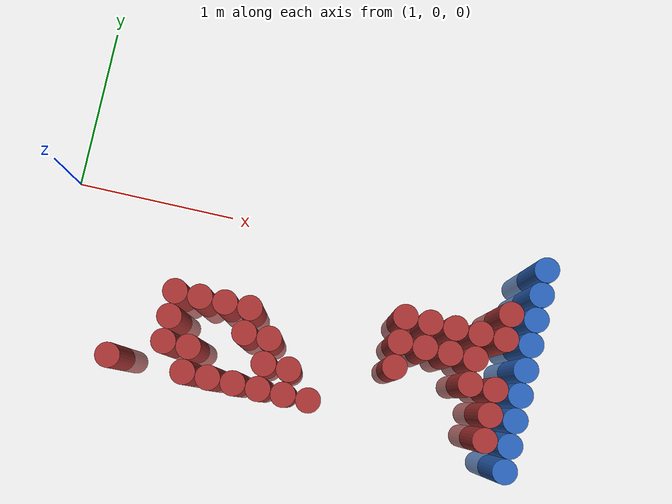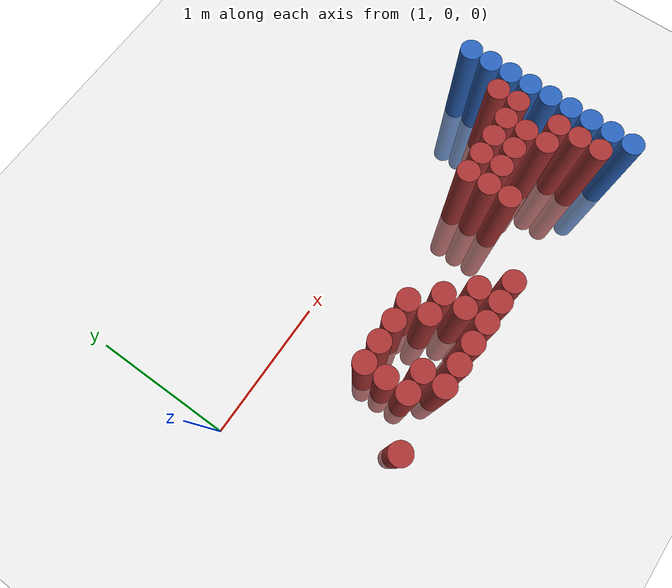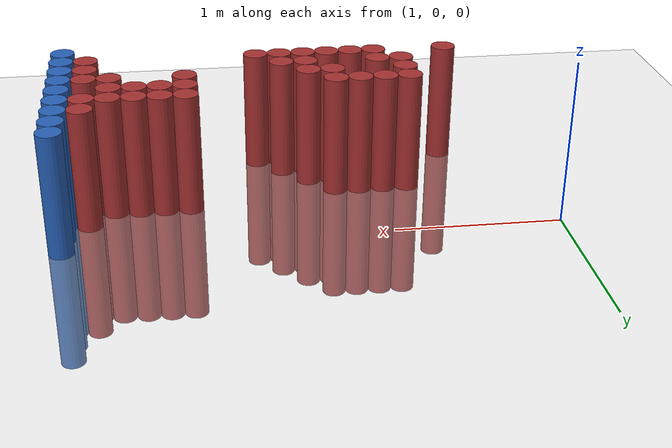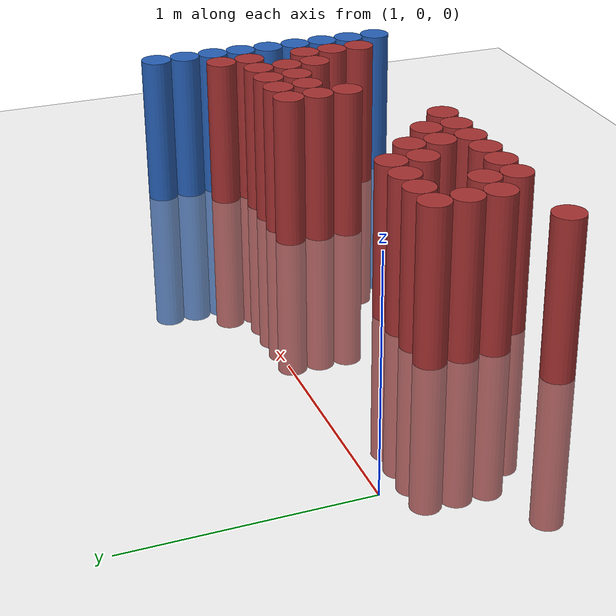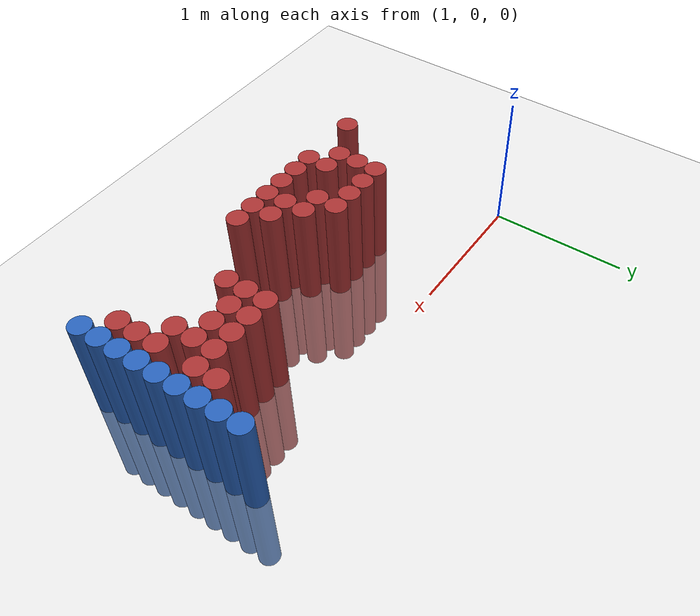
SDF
<sdf version="1.6">
 <world name="default">
  <model name="ground_plane">
   <static>1</static>
   <link name="link">
    <collision name="collision">
     <geometry><plane><normal>0 0 1</normal><size>100 100</size></plane></geometry>
     <surface><friction><ode><mu>100</mu><mu2>50</mu2></ode></friction></surface>
    </collision>
    <visual name="visual">
     <cast_shadows>0</cast_shadows>
     <geometry><plane><normal>0 0 1</normal><size>100 100</size></plane></geometry>
     <material>
      <script><uri>file://media/materials/scripts/gazebo.material</uri><name>Gazebo/Grey</name></script>
     </material>
    </visual>
   </link>
  </model>
  <model name="unit_cylinder_100">
   <static>1</static>
   <pose>3.925000 -1.025000 0.000000 0.000000 0.000000 0.000000</pose>
   <link name="link">
    <inertial>
     <mass>1</mass>
     <inertia><ixx>0.145833</ixx><ixy>0</ixy><ixz>0</ixz><iyy>0.145833</iyy><iyz>0</iyz><izz>0.125</izz></inertia>
    </inertial>
    <collision name="collision">
     <geometry><cylinder><radius>0.075000</radius><length>1.5</length></cylinder></geometry>
    </collision>
    <visual name="visual">
     <geometry><cylinder><radius>0.075000</radius><length>1.5</length></cylinder></geometry>
     <material>
      <ambient>0.152000 0.379000 0.720000 1</ambient>
      <diffuse>0.152000 0.379000 0.720000 1</diffuse>
     </material>
     <material>
      <script><name>Gazebo/Grey</name><uri>file://media/materials/scripts/gazebo.material</uri></script>
     </material>
    </visual>
   </link>
  </model>
  <model name="unit_cylinder_102">
   <static>1</static>
   <pose>3.925000 -0.875000 0.000000 0.000000 0.000000 0.000000</pose>
   <link name="link">
    <inertial>
     <mass>1</mass>
     <inertia><ixx>0.145833</ixx><ixy>0</ixy><ixz>0</ixz><iyy>0.145833</iyy><iyz>0</iyz><izz>0.125</izz></inertia>
    </inertial>
    <collision name="collision">
     <geometry><cylinder><radius>0.075000</radius><length>1.5</length></cylinder></geometry>
    </collision>
    <visual name="visual">
     <geometry><cylinder><radius>0.075000</radius><length>1.5</length></cylinder></geometry>
     <material>
      <ambient>0.152000 0.379000 0.720000 1</ambient>
      <diffuse>0.152000 0.379000 0.720000 1</diffuse>
     </material>
     <material>
      <script><name>Gazebo/Grey</name><uri>file://media/materials/scripts/gazebo.material</uri></script>
     </material>
    </visual>
   </link>
  </model>
  <model name="unit_cylinder_104">
   <static>1</static>
   <pose>3.925000 -0.725000 0.000000 0.000000 0.000000 0.000000</pose>
   <link name="link">
    <inertial>
     <mass>1</mass>
     <inertia><ixx>0.145833</ixx><ixy>0</ixy><ixz>0</ixz><iyy>0.145833</iyy><iyz>0</iyz><izz>0.125</izz></inertia>
    </inertial>
    <collision name="collision">
     <geometry><cylinder><radius>0.075000</radius><length>1.5</length></cylinder></geometry>
    </collision>
    <visual name="visual">
     <geometry><cylinder><radius>0.075000</radius><length>1.5</length></cylinder></geometry>
     <material>
      <ambient>0.152000 0.379000 0.720000 1</ambient>
      <diffuse>0.152000 0.379000 0.720000 1</diffuse>
     </material>
     <material>
      <script><name>Gazebo/Grey</name><uri>file://media/materials/scripts/gazebo.material</uri></script>
     </material>
    </visual>
   </link>
  </model>
  <model name="unit_cylinder_106">
   <static>1</static>
   <pose>3.925000 -0.575000 0.000000 0.000000 0.000000 0.000000</pose>
   <link name="link">
    <inertial>
     <mass>1</mass>
     <inertia><ixx>0.145833</ixx><ixy>0</ixy><ixz>0</ixz><iyy>0.145833</iyy><iyz>0</iyz><izz>0.125</izz></inertia>
    </inertial>
    <collision name="collision">
     <geometry><cylinder><radius>0.075000</radius><length>1.5</length></cylinder></geometry>
    </collision>
    <visual name="visual">
     <geometry><cylinder><radius>0.075000</radius><length>1.5</length></cylinder></geometry>
     <material>
      <ambient>0.152000 0.379000 0.720000 1</ambient>
      <diffuse>0.152000 0.379000 0.720000 1</diffuse>
     </material>
     <material>
      <script><name>Gazebo/Grey</name><uri>file://media/materials/scripts/gazebo.material</uri></script>
     </material>
    </visual>
   </link>
  </model>
  <model name="unit_cylinder_108">
   <static>1</static>
   <pose>3.925000 -0.425000 0.000000 0.000000 0.000000 0.000000</pose>
   <link name="link">
    <inertial>
     <mass>1</mass>
     <inertia><ixx>0.145833</ixx><ixy>0</ixy><ixz>0</ixz><iyy>0.145833</iyy><iyz>0</iyz><izz>0.125</izz></inertia>
    </inertial>
    <collision name="collision">
     <geometry><cylinder><radius>0.075000</radius><length>1.5</length></cylinder></geometry>
    </collision>
    <visual name="visual">
     <geometry><cylinder><radius>0.075000</radius><length>1.5</length></cylinder></geometry>
     <material>
      <ambient>0.152000 0.379000 0.720000 1</ambient>
      <diffuse>0.152000 0.379000 0.720000 1</diffuse>
     </material>
     <material>
      <script><name>Gazebo/Grey</name><uri>file://media/materials/scripts/gazebo.material</uri></script>
     </material>
    </visual>
   </link>
  </model>
  <model name="unit_cylinder_110">
   <static>1</static>
   <pose>3.925000 -0.275000 0.000000 0.000000 0.000000 0.000000</pose>
   <link name="link">
    <inertial>
     <mass>1</mass>
     <inertia><ixx>0.145833</ixx><ixy>0</ixy><ixz>0</ixz><iyy>0.145833</iyy><iyz>0</iyz><izz>0.125</izz></inertia>
    </inertial>
    <collision name="collision">
     <geometry><cylinder><radius>0.075000</radius><length>1.5</length></cylinder></geometry>
    </collision>
    <visual name="visual">
     <geometry><cylinder><radius>0.075000</radius><length>1.5</length></cylinder></geometry>
     <material>
      <ambient>0.152000 0.379000 0.720000 1</ambient>
      <diffuse>0.152000 0.379000 0.720000 1</diffuse>
     </material>
     <material>
      <script><name>Gazebo/Grey</name><uri>file://media/materials/scripts/gazebo.material</uri></script>
     </material>
    </visual>
   </link>
  </model>
  <model name="unit_cylinder_112">
   <static>1</static>
   <pose>3.925000 -0.125000 0.000000 0.000000 0.000000 0.000000</pose>
   <link name="link">
    <inertial>
     <mass>1</mass>
     <inertia><ixx>0.145833</ixx><ixy>0</ixy><ixz>0</ixz><iyy>0.145833</iyy><iyz>0</iyz><izz>0.125</izz></inertia>
    </inertial>
    <collision name="collision">
     <geometry><cylinder><radius>0.075000</radius><length>1.5</length></cylinder></geometry>
    </collision>
    <visual name="visual">
     <geometry><cylinder><radius>0.075000</radius><length>1.5</length></cylinder></geometry>
     <material>
      <ambient>0.152000 0.379000 0.720000 1</ambient>
      <diffuse>0.152000 0.379000 0.720000 1</diffuse>
     </material>
     <material>
      <script><name>Gazebo/Grey</name><uri>file://media/materials/scripts/gazebo.material</uri></script>
     </material>
    </visual>
   </link>
  </model>
  <model name="unit_cylinder_114">
   <static>1</static>
   <pose>3.925000 0.025000 0.000000 0.000000 0.000000 0.000000</pose>
   <link name="link">
    <inertial>
     <mass>1</mass>
     <inertia><ixx>0.145833</ixx><ixy>0</ixy><ixz>0</ixz><iyy>0.145833</iyy><iyz>0</iyz><izz>0.125</izz></inertia>
    </inertial>
    <collision name="collision">
     <geometry><cylinder><radius>0.075000</radius><length>1.5</length></cylinder></geometry>
    </collision>
    <visual name="visual">
     <geometry><cylinder><radius>0.075000</radius><length>1.5</length></cylinder></geometry>
     <material>
      <ambient>0.152000 0.379000 0.720000 1</ambient>
      <diffuse>0.152000 0.379000 0.720000 1</diffuse>
     </material>
     <material>
      <script><name>Gazebo/Grey</name><uri>file://media/materials/scripts/gazebo.material</uri></script>
     </material>
    </visual>
   </link>
  </model>
  <model name="unit_cylinder_340">
   <static>1</static>
   <pose>1.525000 -1.025000 0.000000 0.000000 0.000000 0.000000</pose>
   <link name="link">
    <inertial>
     <mass>1</mass>
     <inertia><ixx>0.145833</ixx><ixy>0</ixy><ixz>0</ixz><iyy>0.145833</iyy><iyz>0</iyz><izz>0.125</izz></inertia>
    </inertial>
    <collision name="collision">
     <geometry><cylinder><radius>0.075000</radius><length>1.5</length></cylinder></geometry>
    </collision>
    <visual name="visual">
     <geometry><cylinder><radius>0.075000</radius><length>1.5</length></cylinder></geometry>
     <material>
      <ambient>0.648000 0.192000 0.192000 1</ambient>
      <diffuse>0.648000 0.192000 0.192000 1</diffuse>
     </material>
     <material>
      <script><name>Gazebo/Grey</name><uri>file://media/materials/scripts/gazebo.material</uri></script>
     </material>
    </visual>
   </link>
  </model>
  <model name="unit_cylinder_347">
   <static>1</static>
   <pose>1.825000 -0.875000 0.000000 0.000000 0.000000 0.000000</pose>
   <link name="link">
    <inertial>
     <mass>1</mass>
     <inertia><ixx>0.145833</ixx><ixy>0</ixy><ixz>0</ixz><iyy>0.145833</iyy><iyz>0</iyz><izz>0.125</izz></inertia>
    </inertial>
    <collision name="collision">
     <geometry><cylinder><radius>0.075000</radius><length>1.5</length></cylinder></geometry>
    </collision>
    <visual name="visual">
     <geometry><cylinder><radius>0.075000</radius><length>1.5</length></cylinder></geometry>
     <material>
      <ambient>0.648000 0.192000 0.192000 1</ambient>
      <diffuse>0.648000 0.192000 0.192000 1</diffuse>
     </material>
     <material>
      <script><name>Gazebo/Grey</name><uri>file://media/materials/scripts/gazebo.material</uri></script>
     </material>
    </visual>
   </link>
  </model>
  <model name="unit_cylinder_348">
   <static>1</static>
   <pose>1.825000 -0.725000 0.000000 0.000000 0.000000 0.000000</pose>
   <link name="link">
    <inertial>
     <mass>1</mass>
     <inertia><ixx>0.145833</ixx><ixy>0</ixy><ixz>0</ixz><iyy>0.145833</iyy><iyz>0</iyz><izz>0.125</izz></inertia>
    </inertial>
    <collision name="collision">
     <geometry><cylinder><radius>0.075000</radius><length>1.5</length></cylinder></geometry>
    </collision>
    <visual name="visual">
     <geometry><cylinder><radius>0.075000</radius><length>1.5</length></cylinder></geometry>
     <material>
      <ambient>0.648000 0.192000 0.192000 1</ambient>
      <diffuse>0.648000 0.192000 0.192000 1</diffuse>
     </material>
     <material>
      <script><name>Gazebo/Grey</name><uri>file://media/materials/scripts/gazebo.material</uri></script>
     </material>
    </visual>
   </link>
  </model>
  <model name="unit_cylinder_349">
   <static>1</static>
   <pose>1.825000 -0.575000 0.000000 0.000000 0.000000 0.000000</pose>
   <link name="link">
    <inertial>
     <mass>1</mass>
     <inertia><ixx>0.145833</ixx><ixy>0</ixy><ixz>0</ixz><iyy>0.145833</iyy><iyz>0</iyz><izz>0.125</izz></inertia>
    </inertial>
    <collision name="collision">
     <geometry><cylinder><radius>0.075000</radius><length>1.5</length></cylinder></geometry>
    </collision>
    <visual name="visual">
     <geometry><cylinder><radius>0.075000</radius><length>1.5</length></cylinder></geometry>
     <material>
      <ambient>0.648000 0.192000 0.192000 1</ambient>
      <diffuse>0.648000 0.192000 0.192000 1</diffuse>
     </material>
     <material>
      <script><name>Gazebo/Grey</name><uri>file://media/materials/scripts/gazebo.material</uri></script>
     </material>
    </visual>
   </link>
  </model>
  <model name="unit_cylinder_350">
   <static>1</static>
   <pose>1.975000 -1.025000 0.000000 0.000000 0.000000 0.000000</pose>
   <link name="link">
    <inertial>
     <mass>1</mass>
     <inertia><ixx>0.145833</ixx><ixy>0</ixy><ixz>0</ixz><iyy>0.145833</iyy><iyz>0</iyz><izz>0.125</izz></inertia>
    </inertial>
    <collision name="collision">
     <geometry><cylinder><radius>0.075000</radius><length>1.5</length></cylinder></geometry>
    </collision>
    <visual name="visual">
     <geometry><cylinder><radius>0.075000</radius><length>1.5</length></cylinder></geometry>
     <material>
      <ambient>0.648000 0.192000 0.192000 1</ambient>
      <diffuse>0.648000 0.192000 0.192000 1</diffuse>
     </material>
     <material>
      <script><name>Gazebo/Grey</name><uri>file://media/materials/scripts/gazebo.material</uri></script>
     </material>
    </visual>
   </link>
  </model>
  <model name="unit_cylinder_351">
   <static>1</static>
   <pose>1.975000 -0.875000 0.000000 0.000000 0.000000 0.000000</pose>
   <link name="link">
    <inertial>
     <mass>1</mass>
     <inertia><ixx>0.145833</ixx><ixy>0</ixy><ixz>0</ixz><iyy>0.145833</iyy><iyz>0</iyz><izz>0.125</izz></inertia>
    </inertial>
    <collision name="collision">
     <geometry><cylinder><radius>0.075000</radius><length>1.5</length></cylinder></geometry>
    </collision>
    <visual name="visual">
     <geometry><cylinder><radius>0.075000</radius><length>1.5</length></cylinder></geometry>
     <material>
      <ambient>0.648000 0.192000 0.192000 1</ambient>
      <diffuse>0.648000 0.192000 0.192000 1</diffuse>
     </material>
     <material>
      <script><name>Gazebo/Grey</name><uri>file://media/materials/scripts/gazebo.material</uri></script>
     </material>
    </visual>
   </link>
  </model>
  <model name="unit_cylinder_352">
   <static>1</static>
   <pose>1.975000 -0.575000 0.000000 0.000000 0.000000 0.000000</pose>
   <link name="link">
    <inertial>
     <mass>1</mass>
     <inertia><ixx>0.145833</ixx><ixy>0</ixy><ixz>0</ixz><iyy>0.145833</iyy><iyz>0</iyz><izz>0.125</izz></inertia>
    </inertial>
    <collision name="collision">
     <geometry><cylinder><radius>0.075000</radius><length>1.5</length></cylinder></geometry>
    </collision>
    <visual name="visual">
     <geometry><cylinder><radius>0.075000</radius><length>1.5</length></cylinder></geometry>
     <material>
      <ambient>0.648000 0.192000 0.192000 1</ambient>
      <diffuse>0.648000 0.192000 0.192000 1</diffuse>
     </material>
     <material>
      <script><name>Gazebo/Grey</name><uri>file://media/materials/scripts/gazebo.material</uri></script>
     </material>
    </visual>
   </link>
  </model>
  <model name="unit_cylinder_354">
   <static>1</static>
   <pose>2.125000 -1.025000 0.000000 0.000000 0.000000 0.000000</pose>
   <link name="link">
    <inertial>
     <mass>1</mass>
     <inertia><ixx>0.145833</ixx><ixy>0</ixy><ixz>0</ixz><iyy>0.145833</iyy><iyz>0</iyz><izz>0.125</izz></inertia>
    </inertial>
    <collision name="collision">
     <geometry><cylinder><radius>0.075000</radius><length>1.5</length></cylinder></geometry>
    </collision>
    <visual name="visual">
     <geometry><cylinder><radius>0.075000</radius><length>1.5</length></cylinder></geometry>
     <material>
      <ambient>0.648000 0.192000 0.192000 1</ambient>
      <diffuse>0.648000 0.192000 0.192000 1</diffuse>
     </material>
     <material>
      <script><name>Gazebo/Grey</name><uri>file://media/materials/scripts/gazebo.material</uri></script>
     </material>
    </visual>
   </link>
  </model>
  <model name="unit_cylinder_355">
   <static>1</static>
   <pose>2.125000 -0.575000 0.000000 0.000000 0.000000 0.000000</pose>
   <link name="link">
    <inertial>
     <mass>1</mass>
     <inertia><ixx>0.145833</ixx><ixy>0</ixy><ixz>0</ixz><iyy>0.145833</iyy><iyz>0</iyz><izz>0.125</izz></inertia>
    </inertial>
    <collision name="collision">
     <geometry><cylinder><radius>0.075000</radius><length>1.5</length></cylinder></geometry>
    </collision>
    <visual name="visual">
     <geometry><cylinder><radius>0.075000</radius><length>1.5</length></cylinder></geometry>
     <material>
      <ambient>0.648000 0.192000 0.192000 1</ambient>
      <diffuse>0.648000 0.192000 0.192000 1</diffuse>
     </material>
     <material>
      <script><name>Gazebo/Grey</name><uri>file://media/materials/scripts/gazebo.material</uri></script>
     </material>
    </visual>
   </link>
  </model>
  <model name="unit_cylinder_359">
   <static>1</static>
   <pose>2.275000 -1.025000 0.000000 0.000000 0.000000 0.000000</pose>
   <link name="link">
    <inertial>
     <mass>1</mass>
     <inertia><ixx>0.145833</ixx><ixy>0</ixy><ixz>0</ixz><iyy>0.145833</iyy><iyz>0</iyz><izz>0.125</izz></inertia>
    </inertial>
    <collision name="collision">
     <geometry><cylinder><radius>0.075000</radius><length>1.5</length></cylinder></geometry>
    </collision>
    <visual name="visual">
     <geometry><cylinder><radius>0.075000</radius><length>1.5</length></cylinder></geometry>
     <material>
      <ambient>0.648000 0.192000 0.192000 1</ambient>
      <diffuse>0.648000 0.192000 0.192000 1</diffuse>
     </material>
     <material>
      <script><name>Gazebo/Grey</name><uri>file://media/materials/scripts/gazebo.material</uri></script>
     </material>
    </visual>
   </link>
  </model>
  <model name="unit_cylinder_360">
   <static>1</static>
   <pose>2.275000 -0.725000 0.000000 0.000000 0.000000 0.000000</pose>
   <link name="link">
    <inertial>
     <mass>1</mass>
     <inertia><ixx>0.145833</ixx><ixy>0</ixy><ixz>0</ixz><iyy>0.145833</iyy><iyz>0</iyz><izz>0.125</izz></inertia>
    </inertial>
    <collision name="collision">
     <geometry><cylinder><radius>0.075000</radius><length>1.5</length></cylinder></geometry>
    </collision>
    <visual name="visual">
     <geometry><cylinder><radius>0.075000</radius><length>1.5</length></cylinder></geometry>
     <material>
      <ambient>0.648000 0.192000 0.192000 1</ambient>
      <diffuse>0.648000 0.192000 0.192000 1</diffuse>
     </material>
     <material>
      <script><name>Gazebo/Grey</name><uri>file://media/materials/scripts/gazebo.material</uri></script>
     </material>
    </visual>
   </link>
  </model>
  <model name="unit_cylinder_361">
   <static>1</static>
   <pose>2.275000 -0.575000 0.000000 0.000000 0.000000 0.000000</pose>
   <link name="link">
    <inertial>
     <mass>1</mass>
     <inertia><ixx>0.145833</ixx><ixy>0</ixy><ixz>0</ixz><iyy>0.145833</iyy><iyz>0</iyz><izz>0.125</izz></inertia>
    </inertial>
    <collision name="collision">
     <geometry><cylinder><radius>0.075000</radius><length>1.5</length></cylinder></geometry>
    </collision>
    <visual name="visual">
     <geometry><cylinder><radius>0.075000</radius><length>1.5</length></cylinder></geometry>
     <material>
      <ambient>0.648000 0.192000 0.192000 1</ambient>
      <diffuse>0.648000 0.192000 0.192000 1</diffuse>
     </material>
     <material>
      <script><name>Gazebo/Grey</name><uri>file://media/materials/scripts/gazebo.material</uri></script>
     </material>
    </visual>
   </link>
  </model>
  <model name="unit_cylinder_362">
   <static>1</static>
   <pose>2.425000 -1.025000 0.000000 0.000000 0.000000 0.000000</pose>
   <link name="link">
    <inertial>
     <mass>1</mass>
     <inertia><ixx>0.145833</ixx><ixy>0</ixy><ixz>0</ixz><iyy>0.145833</iyy><iyz>0</iyz><izz>0.125</izz></inertia>
    </inertial>
    <collision name="collision">
     <geometry><cylinder><radius>0.075000</radius><length>1.5</length></cylinder></geometry>
    </collision>
    <visual name="visual">
     <geometry><cylinder><radius>0.075000</radius><length>1.5</length></cylinder></geometry>
     <material>
      <ambient>0.648000 0.192000 0.192000 1</ambient>
      <diffuse>0.648000 0.192000 0.192000 1</diffuse>
     </material>
     <material>
      <script><name>Gazebo/Grey</name><uri>file://media/materials/scripts/gazebo.material</uri></script>
     </material>
    </visual>
   </link>
  </model>
  <model name="unit_cylinder_363">
   <static>1</static>
   <pose>2.425000 -0.875000 0.000000 0.000000 0.000000 0.000000</pose>
   <link name="link">
    <inertial>
     <mass>1</mass>
     <inertia><ixx>0.145833</ixx><ixy>0</ixy><ixz>0</ixz><iyy>0.145833</iyy><iyz>0</iyz><izz>0.125</izz></inertia>
    </inertial>
    <collision name="collision">
     <geometry><cylinder><radius>0.075000</radius><length>1.5</length></cylinder></geometry>
    </collision>
    <visual name="visual">
     <geometry><cylinder><radius>0.075000</radius><length>1.5</length></cylinder></geometry>
     <material>
      <ambient>0.648000 0.192000 0.192000 1</ambient>
      <diffuse>0.648000 0.192000 0.192000 1</diffuse>
     </material>
     <material>
      <script><name>Gazebo/Grey</name><uri>file://media/materials/scripts/gazebo.material</uri></script>
     </material>
    </visual>
   </link>
  </model>
  <model name="unit_cylinder_364">
   <static>1</static>
   <pose>2.425000 -0.725000 0.000000 0.000000 0.000000 0.000000</pose>
   <link name="link">
    <inertial>
     <mass>1</mass>
     <inertia><ixx>0.145833</ixx><ixy>0</ixy><ixz>0</ixz><iyy>0.145833</iyy><iyz>0</iyz><izz>0.125</izz></inertia>
    </inertial>
    <collision name="collision">
     <geometry><cylinder><radius>0.075000</radius><length>1.5</length></cylinder></geometry>
    </collision>
    <visual name="visual">
     <geometry><cylinder><radius>0.075000</radius><length>1.5</length></cylinder></geometry>
     <material>
      <ambient>0.648000 0.192000 0.192000 1</ambient>
      <diffuse>0.648000 0.192000 0.192000 1</diffuse>
     </material>
     <material>
      <script><name>Gazebo/Grey</name><uri>file://media/materials/scripts/gazebo.material</uri></script>
     </material>
    </visual>
   </link>
  </model>
  <model name="unit_cylinder_365">
   <static>1</static>
   <pose>2.575000 -1.025000 0.000000 0.000000 0.000000 0.000000</pose>
   <link name="link">
    <inertial>
     <mass>1</mass>
     <inertia><ixx>0.145833</ixx><ixy>0</ixy><ixz>0</ixz><iyy>0.145833</iyy><iyz>0</iyz><izz>0.125</izz></inertia>
    </inertial>
    <collision name="collision">
     <geometry><cylinder><radius>0.075000</radius><length>1.5</length></cylinder></geometry>
    </collision>
    <visual name="visual">
     <geometry><cylinder><radius>0.075000</radius><length>1.5</length></cylinder></geometry>
     <material>
      <ambient>0.648000 0.192000 0.192000 1</ambient>
      <diffuse>0.648000 0.192000 0.192000 1</diffuse>
     </material>
     <material>
      <script><name>Gazebo/Grey</name><uri>file://media/materials/scripts/gazebo.material</uri></script>
     </material>
    </visual>
   </link>
  </model>
  <model name="unit_cylinder_366">
   <static>1</static>
   <pose>2.575000 -0.875000 0.000000 0.000000 0.000000 0.000000</pose>
   <link name="link">
    <inertial>
     <mass>1</mass>
     <inertia><ixx>0.145833</ixx><ixy>0</ixy><ixz>0</ixz><iyy>0.145833</iyy><iyz>0</iyz><izz>0.125</izz></inertia>
    </inertial>
    <collision name="collision">
     <geometry><cylinder><radius>0.075000</radius><length>1.5</length></cylinder></geometry>
    </collision>
    <visual name="visual">
     <geometry><cylinder><radius>0.075000</radius><length>1.5</length></cylinder></geometry>
     <material>
      <ambient>0.648000 0.192000 0.192000 1</ambient>
      <diffuse>0.648000 0.192000 0.192000 1</diffuse>
     </material>
     <material>
      <script><name>Gazebo/Grey</name><uri>file://media/materials/scripts/gazebo.material</uri></script>
     </material>
    </visual>
   </link>
  </model>
  <model name="unit_cylinder_368">
   <static>1</static>
   <pose>2.725000 -1.025000 0.000000 0.000000 0.000000 0.000000</pose>
   <link name="link">
    <inertial>
     <mass>1</mass>
     <inertia><ixx>0.145833</ixx><ixy>0</ixy><ixz>0</ixz><iyy>0.145833</iyy><iyz>0</iyz><izz>0.125</izz></inertia>
    </inertial>
    <collision name="collision">
     <geometry><cylinder><radius>0.075000</radius><length>1.5</length></cylinder></geometry>
    </collision>
    <visual name="visual">
     <geometry><cylinder><radius>0.075000</radius><length>1.5</length></cylinder></geometry>
     <material>
      <ambient>0.648000 0.192000 0.192000 1</ambient>
      <diffuse>0.648000 0.192000 0.192000 1</diffuse>
     </material>
     <material>
      <script><name>Gazebo/Grey</name><uri>file://media/materials/scripts/gazebo.material</uri></script>
     </material>
    </visual>
   </link>
  </model>
  <model name="unit_cylinder_369">
   <static>1</static>
   <pose>3.175000 -0.725000 0.000000 0.000000 0.000000 0.000000</pose>
   <link name="link">
    <inertial>
     <mass>1</mass>
     <inertia><ixx>0.145833</ixx><ixy>0</ixy><ixz>0</ixz><iyy>0.145833</iyy><iyz>0</iyz><izz>0.125</izz></inertia>
    </inertial>
    <collision name="collision">
     <geometry><cylinder><radius>0.075000</radius><length>1.5</length></cylinder></geometry>
    </collision>
    <visual name="visual">
     <geometry><cylinder><radius>0.075000</radius><length>1.5</length></cylinder></geometry>
     <material>
      <ambient>0.648000 0.192000 0.192000 1</ambient>
      <diffuse>0.648000 0.192000 0.192000 1</diffuse>
     </material>
     <material>
      <script><name>Gazebo/Grey</name><uri>file://media/materials/scripts/gazebo.material</uri></script>
     </material>
    </visual>
   </link>
  </model>
  <model name="unit_cylinder_370">
   <static>1</static>
   <pose>3.175000 -0.575000 0.000000 0.000000 0.000000 0.000000</pose>
   <link name="link">
    <inertial>
     <mass>1</mass>
     <inertia><ixx>0.145833</ixx><ixy>0</ixy><ixz>0</ixz><iyy>0.145833</iyy><iyz>0</iyz><izz>0.125</izz></inertia>
    </inertial>
    <collision name="collision">
     <geometry><cylinder><radius>0.075000</radius><length>1.5</length></cylinder></geometry>
    </collision>
    <visual name="visual">
     <geometry><cylinder><radius>0.075000</radius><length>1.5</length></cylinder></geometry>
     <material>
      <ambient>0.648000 0.192000 0.192000 1</ambient>
      <diffuse>0.648000 0.192000 0.192000 1</diffuse>
     </material>
     <material>
      <script><name>Gazebo/Grey</name><uri>file://media/materials/scripts/gazebo.material</uri></script>
     </material>
    </visual>
   </link>
  </model>
  <model name="unit_cylinder_371">
   <static>1</static>
   <pose>3.175000 -0.425000 0.000000 0.000000 0.000000 0.000000</pose>
   <link name="link">
    <inertial>
     <mass>1</mass>
     <inertia><ixx>0.145833</ixx><ixy>0</ixy><ixz>0</ixz><iyy>0.145833</iyy><iyz>0</iyz><izz>0.125</izz></inertia>
    </inertial>
    <collision name="collision">
     <geometry><cylinder><radius>0.075000</radius><length>1.5</length></cylinder></geometry>
    </collision>
    <visual name="visual">
     <geometry><cylinder><radius>0.075000</radius><length>1.5</length></cylinder></geometry>
     <material>
      <ambient>0.648000 0.192000 0.192000 1</ambient>
      <diffuse>0.648000 0.192000 0.192000 1</diffuse>
     </material>
     <material>
      <script><name>Gazebo/Grey</name><uri>file://media/materials/scripts/gazebo.material</uri></script>
     </material>
    </visual>
   </link>
  </model>
  <model name="unit_cylinder_372">
   <static>1</static>
   <pose>3.325000 -0.575000 0.000000 0.000000 0.000000 0.000000</pose>
   <link name="link">
    <inertial>
     <mass>1</mass>
     <inertia><ixx>0.145833</ixx><ixy>0</ixy><ixz>0</ixz><iyy>0.145833</iyy><iyz>0</iyz><izz>0.125</izz></inertia>
    </inertial>
    <collision name="collision">
     <geometry><cylinder><radius>0.075000</radius><length>1.5</length></cylinder></geometry>
    </collision>
    <visual name="visual">
     <geometry><cylinder><radius>0.075000</radius><length>1.5</length></cylinder></geometry>
     <material>
      <ambient>0.648000 0.192000 0.192000 1</ambient>
      <diffuse>0.648000 0.192000 0.192000 1</diffuse>
     </material>
     <material>
      <script><name>Gazebo/Grey</name><uri>file://media/materials/scripts/gazebo.material</uri></script>
     </material>
    </visual>
   </link>
  </model>
  <model name="unit_cylinder_373">
   <static>1</static>
   <pose>3.325000 -0.425000 0.000000 0.000000 0.000000 0.000000</pose>
   <link name="link">
    <inertial>
     <mass>1</mass>
     <inertia><ixx>0.145833</ixx><ixy>0</ixy><ixz>0</ixz><iyy>0.145833</iyy><iyz>0</iyz><izz>0.125</izz></inertia>
    </inertial>
    <collision name="collision">
     <geometry><cylinder><radius>0.075000</radius><length>1.5</length></cylinder></geometry>
    </collision>
    <visual name="visual">
     <geometry><cylinder><radius>0.075000</radius><length>1.5</length></cylinder></geometry>
     <material>
      <ambient>0.648000 0.192000 0.192000 1</ambient>
      <diffuse>0.648000 0.192000 0.192000 1</diffuse>
     </material>
     <material>
      <script><name>Gazebo/Grey</name><uri>file://media/materials/scripts/gazebo.material</uri></script>
     </material>
    </visual>
   </link>
  </model>
  <model name="unit_cylinder_374">
   <static>1</static>
   <pose>3.475000 -0.575000 0.000000 0.000000 0.000000 0.000000</pose>
   <link name="link">
    <inertial>
     <mass>1</mass>
     <inertia><ixx>0.145833</ixx><ixy>0</ixy><ixz>0</ixz><iyy>0.145833</iyy><iyz>0</iyz><izz>0.125</izz></inertia>
    </inertial>
    <collision name="collision">
     <geometry><cylinder><radius>0.075000</radius><length>1.5</length></cylinder></geometry>
    </collision>
    <visual name="visual">
     <geometry><cylinder><radius>0.075000</radius><length>1.5</length></cylinder></geometry>
     <material>
      <ambient>0.648000 0.192000 0.192000 1</ambient>
      <diffuse>0.648000 0.192000 0.192000 1</diffuse>
     </material>
     <material>
      <script><name>Gazebo/Grey</name><uri>file://media/materials/scripts/gazebo.material</uri></script>
     </material>
    </visual>
   </link>
  </model>
  <model name="unit_cylinder_375">
   <static>1</static>
   <pose>3.475000 -0.425000 0.000000 0.000000 0.000000 0.000000</pose>
   <link name="link">
    <inertial>
     <mass>1</mass>
     <inertia><ixx>0.145833</ixx><ixy>0</ixy><ixz>0</ixz><iyy>0.145833</iyy><iyz>0</iyz><izz>0.125</izz></inertia>
    </inertial>
    <collision name="collision">
     <geometry><cylinder><radius>0.075000</radius><length>1.5</length></cylinder></geometry>
    </collision>
    <visual name="visual">
     <geometry><cylinder><radius>0.075000</radius><length>1.5</length></cylinder></geometry>
     <material>
      <ambient>0.648000 0.192000 0.192000 1</ambient>
      <diffuse>0.648000 0.192000 0.192000 1</diffuse>
     </material>
     <material>
      <script><name>Gazebo/Grey</name><uri>file://media/materials/scripts/gazebo.material</uri></script>
     </material>
    </visual>
   </link>
  </model>
  <model name="unit_cylinder_376">
   <static>1</static>
   <pose>3.625000 -0.725000 0.000000 0.000000 0.000000 0.000000</pose>
   <link name="link">
    <inertial>
     <mass>1</mass>
     <inertia><ixx>0.145833</ixx><ixy>0</ixy><ixz>0</ixz><iyy>0.145833</iyy><iyz>0</iyz><izz>0.125</izz></inertia>
    </inertial>
    <collision name="collision">
     <geometry><cylinder><radius>0.075000</radius><length>1.5</length></cylinder></geometry>
    </collision>
    <visual name="visual">
     <geometry><cylinder><radius>0.075000</radius><length>1.5</length></cylinder></geometry>
     <material>
      <ambient>0.648000 0.192000 0.192000 1</ambient>
      <diffuse>0.648000 0.192000 0.192000 1</diffuse>
     </material>
     <material>
      <script><name>Gazebo/Grey</name><uri>file://media/materials/scripts/gazebo.material</uri></script>
     </material>
    </visual>
   </link>
  </model>
  <model name="unit_cylinder_377">
   <static>1</static>
   <pose>3.625000 -0.575000 0.000000 0.000000 0.000000 0.000000</pose>
   <link name="link">
    <inertial>
     <mass>1</mass>
     <inertia><ixx>0.145833</ixx><ixy>0</ixy><ixz>0</ixz><iyy>0.145833</iyy><iyz>0</iyz><izz>0.125</izz></inertia>
    </inertial>
    <collision name="collision">
     <geometry><cylinder><radius>0.075000</radius><length>1.5</length></cylinder></geometry>
    </collision>
    <visual name="visual">
     <geometry><cylinder><radius>0.075000</radius><length>1.5</length></cylinder></geometry>
     <material>
      <ambient>0.648000 0.192000 0.192000 1</ambient>
      <diffuse>0.648000 0.192000 0.192000 1</diffuse>
     </material>
     <material>
      <script><name>Gazebo/Grey</name><uri>file://media/materials/scripts/gazebo.material</uri></script>
     </material>
    </visual>
   </link>
  </model>
  <model name="unit_cylinder_378">
   <static>1</static>
   <pose>3.625000 -0.425000 0.000000 0.000000 0.000000 0.000000</pose>
   <link name="link">
    <inertial>
     <mass>1</mass>
     <inertia><ixx>0.145833</ixx><ixy>0</ixy><ixz>0</ixz><iyy>0.145833</iyy><iyz>0</iyz><izz>0.125</izz></inertia>
    </inertial>
    <collision name="collision">
     <geometry><cylinder><radius>0.075000</radius><length>1.5</length></cylinder></geometry>
    </collision>
    <visual name="visual">
     <geometry><cylinder><radius>0.075000</radius><length>1.5</length></cylinder></geometry>
     <material>
      <ambient>0.648000 0.192000 0.192000 1</ambient>
      <diffuse>0.648000 0.192000 0.192000 1</diffuse>
     </material>
     <material>
      <script><name>Gazebo/Grey</name><uri>file://media/materials/scripts/gazebo.material</uri></script>
     </material>
    </visual>
   </link>
  </model>
  <model name="unit_cylinder_379">
   <static>1</static>
   <pose>3.775000 -1.025000 0.000000 0.000000 0.000000 0.000000</pose>
   <link name="link">
    <inertial>
     <mass>1</mass>
     <inertia><ixx>0.145833</ixx><ixy>0</ixy><ixz>0</ixz><iyy>0.145833</iyy><iyz>0</iyz><izz>0.125</izz></inertia>
    </inertial>
    <collision name="collision">
     <geometry><cylinder><radius>0.075000</radius><length>1.5</length></cylinder></geometry>
    </collision>
    <visual name="visual">
     <geometry><cylinder><radius>0.075000</radius><length>1.5</length></cylinder></geometry>
     <material>
      <ambient>0.648000 0.192000 0.192000 1</ambient>
      <diffuse>0.648000 0.192000 0.192000 1</diffuse>
     </material>
     <material>
      <script><name>Gazebo/Grey</name><uri>file://media/materials/scripts/gazebo.material</uri></script>
     </material>
    </visual>
   </link>
  </model>
  <model name="unit_cylinder_380">
   <static>1</static>
   <pose>3.775000 -0.875000 0.000000 0.000000 0.000000 0.000000</pose>
   <link name="link">
    <inertial>
     <mass>1</mass>
     <inertia><ixx>0.145833</ixx><ixy>0</ixy><ixz>0</ixz><iyy>0.145833</iyy><iyz>0</iyz><izz>0.125</izz></inertia>
    </inertial>
    <collision name="collision">
     <geometry><cylinder><radius>0.075000</radius><length>1.5</length></cylinder></geometry>
    </collision>
    <visual name="visual">
     <geometry><cylinder><radius>0.075000</radius><length>1.5</length></cylinder></geometry>
     <material>
      <ambient>0.648000 0.192000 0.192000 1</ambient>
      <diffuse>0.648000 0.192000 0.192000 1</diffuse>
     </material>
     <material>
      <script><name>Gazebo/Grey</name><uri>file://media/materials/scripts/gazebo.material</uri></script>
     </material>
    </visual>
   </link>
  </model>
  <model name="unit_cylinder_381">
   <static>1</static>
   <pose>3.775000 -0.725000 0.000000 0.000000 0.000000 0.000000</pose>
   <link name="link">
    <inertial>
     <mass>1</mass>
     <inertia><ixx>0.145833</ixx><ixy>0</ixy><ixz>0</ixz><iyy>0.145833</iyy><iyz>0</iyz><izz>0.125</izz></inertia>
    </inertial>
    <collision name="collision">
     <geometry><cylinder><radius>0.075000</radius><length>1.5</length></cylinder></geometry>
    </collision>
    <visual name="visual">
     <geometry><cylinder><radius>0.075000</radius><length>1.5</length></cylinder></geometry>
     <material>
      <ambient>0.648000 0.192000 0.192000 1</ambient>
      <diffuse>0.648000 0.192000 0.192000 1</diffuse>
     </material>
     <material>
      <script><name>Gazebo/Grey</name><uri>file://media/materials/scripts/gazebo.material</uri></script>
     </material>
    </visual>
   </link>
  </model>
  <model name="unit_cylinder_382">
   <static>1</static>
   <pose>3.775000 -0.425000 0.000000 0.000000 0.000000 0.000000</pose>
   <link name="link">
    <inertial>
     <mass>1</mass>
     <inertia><ixx>0.145833</ixx><ixy>0</ixy><ixz>0</ixz><iyy>0.145833</iyy><iyz>0</iyz><izz>0.125</izz></inertia>
    </inertial>
    <collision name="collision">
     <geometry><cylinder><radius>0.075000</radius><length>1.5</length></cylinder></geometry>
    </collision>
    <visual name="visual">
     <geometry><cylinder><radius>0.075000</radius><length>1.5</length></cylinder></geometry>
     <material>
      <ambient>0.648000 0.192000 0.192000 1</ambient>
      <diffuse>0.648000 0.192000 0.192000 1</diffuse>
     </material>
     <material>
      <script><name>Gazebo/Grey</name><uri>file://media/materials/scripts/gazebo.material</uri></script>
     </material>
    </visual>
   </link>
  </model>
  <model name="unit_cylinder_383">
   <static>1</static>
   <pose>3.775000 -0.275000 0.000000 0.000000 0.000000 0.000000</pose>
   <link name="link">
    <inertial>
     <mass>1</mass>
     <inertia><ixx>0.145833</ixx><ixy>0</ixy><ixz>0</ixz><iyy>0.145833</iyy><iyz>0</iyz><izz>0.125</izz></inertia>
    </inertial>
    <collision name="collision">
     <geometry><cylinder><radius>0.075000</radius><length>1.5</length></cylinder></geometry>
    </collision>
    <visual name="visual">
     <geometry><cylinder><radius>0.075000</radius><length>1.5</length></cylinder></geometry>
     <material>
      <ambient>0.648000 0.192000 0.192000 1</ambient>
      <diffuse>0.648000 0.192000 0.192000 1</diffuse>
     </material>
     <material>
      <script><name>Gazebo/Grey</name><uri>file://media/materials/scripts/gazebo.material</uri></script>
     </material>
    </visual>
   </link>
  </model>
  <model name="unit_cylinder_397">
   <static>1</static>
   <pose>3.925000 -1.175000 0.000000 0.000000 0.000000 0.000000</pose>
   <link name="link">
    <inertial>
     <mass>1</mass>
     <inertia><ixx>0.145833</ixx><ixy>0</ixy><ixz>0</ixz><iyy>0.145833</iyy><iyz>0</iyz><izz>0.125</izz></inertia>
    </inertial>
    <collision name="collision">
     <geometry><cylinder><radius>0.075000</radius><length>1.5</length></cylinder></geometry>
    </collision>
    <visual name="visual">
     <geometry><cylinder><radius>0.075000</radius><length>1.5</length></cylinder></geometry>
     <material>
      <ambient>0.152000 0.379000 0.720000 1</ambient>
      <diffuse>0.152000 0.379000 0.720000 1</diffuse>
     </material>
     <material>
      <script><name>Gazebo/Grey</name><uri>file://media/materials/scripts/gazebo.material</uri></script>
     </material>
    </visual>
   </link>
  </model>
  <model name="unit_cylinder_398">
   <static>1</static>
   <pose>3.925000 -1.025000 0.000000 0.000000 0.000000 0.000000</pose>
   <link name="link">
    <inertial>
     <mass>1</mass>
     <inertia><ixx>0.145833</ixx><ixy>0</ixy><ixz>0</ixz><iyy>0.145833</iyy><iyz>0</iyz><izz>0.125</izz></inertia>
    </inertial>
    <collision name="collision">
     <geometry><cylinder><radius>0.075000</radius><length>1.5</length></cylinder></geometry>
    </collision>
    <visual name="visual">
     <geometry><cylinder><radius>0.075000</radius><length>1.5</length></cylinder></geometry>
     <material>
      <ambient>0.152000 0.379000 0.720000 1</ambient>
      <diffuse>0.152000 0.379000 0.720000 1</diffuse>
     </material>
     <material>
      <script><name>Gazebo/Grey</name><uri>file://media/materials/scripts/gazebo.material</uri></script>
     </material>
    </visual>
   </link>
  </model>
  <model name="unit_cylinder_399">
   <static>1</static>
   <pose>3.925000 -0.875000 0.000000 0.000000 0.000000 0.000000</pose>
   <link name="link">
    <inertial>
     <mass>1</mass>
     <inertia><ixx>0.145833</ixx><ixy>0</ixy><ixz>0</ixz><iyy>0.145833</iyy><iyz>0</iyz><izz>0.125</izz></inertia>
    </inertial>
    <collision name="collision">
     <geometry><cylinder><radius>0.075000</radius><length>1.5</length></cylinder></geometry>
    </collision>
    <visual name="visual">
     <geometry><cylinder><radius>0.075000</radius><length>1.5</length></cylinder></geometry>
     <material>
      <ambient>0.152000 0.379000 0.720000 1</ambient>
      <diffuse>0.152000 0.379000 0.720000 1</diffuse>
     </material>
     <material>
      <script><name>Gazebo/Grey</name><uri>file://media/materials/scripts/gazebo.material</uri></script>
     </material>
    </visual>
   </link>
  </model>
  <model name="unit_cylinder_400">
   <static>1</static>
   <pose>3.925000 -0.725000 0.000000 0.000000 0.000000 0.000000</pose>
   <link name="link">
    <inertial>
     <mass>1</mass>
     <inertia><ixx>0.145833</ixx><ixy>0</ixy><ixz>0</ixz><iyy>0.145833</iyy><iyz>0</iyz><izz>0.125</izz></inertia>
    </inertial>
    <collision name="collision">
     <geometry><cylinder><radius>0.075000</radius><length>1.5</length></cylinder></geometry>
    </collision>
    <visual name="visual">
     <geometry><cylinder><radius>0.075000</radius><length>1.5</length></cylinder></geometry>
     <material>
      <ambient>0.152000 0.379000 0.720000 1</ambient>
      <diffuse>0.152000 0.379000 0.720000 1</diffuse>
     </material>
     <material>
      <script><name>Gazebo/Grey</name><uri>file://media/materials/scripts/gazebo.material</uri></script>
     </material>
    </visual>
   </link>
  </model>
  <model name="unit_cylinder_401">
   <static>1</static>
   <pose>3.925000 -0.575000 0.000000 0.000000 0.000000 0.000000</pose>
   <link name="link">
    <inertial>
     <mass>1</mass>
     <inertia><ixx>0.145833</ixx><ixy>0</ixy><ixz>0</ixz><iyy>0.145833</iyy><iyz>0</iyz><izz>0.125</izz></inertia>
    </inertial>
    <collision name="collision">
     <geometry><cylinder><radius>0.075000</radius><length>1.5</length></cylinder></geometry>
    </collision>
    <visual name="visual">
     <geometry><cylinder><radius>0.075000</radius><length>1.5</length></cylinder></geometry>
     <material>
      <ambient>0.152000 0.379000 0.720000 1</ambient>
      <diffuse>0.152000 0.379000 0.720000 1</diffuse>
     </material>
     <material>
      <script><name>Gazebo/Grey</name><uri>file://media/materials/scripts/gazebo.material</uri></script>
     </material>
    </visual>
   </link>
  </model>
  <model name="unit_cylinder_402">
   <static>1</static>
   <pose>3.925000 -0.425000 0.000000 0.000000 0.000000 0.000000</pose>
   <link name="link">
    <inertial>
     <mass>1</mass>
     <inertia><ixx>0.145833</ixx><ixy>0</ixy><ixz>0</ixz><iyy>0.145833</iyy><iyz>0</iyz><izz>0.125</izz></inertia>
    </inertial>
    <collision name="collision">
     <geometry><cylinder><radius>0.075000</radius><length>1.5</length></cylinder></geometry>
    </collision>
    <visual name="visual">
     <geometry><cylinder><radius>0.075000</radius><length>1.5</length></cylinder></geometry>
     <material>
      <ambient>0.152000 0.379000 0.720000 1</ambient>
      <diffuse>0.152000 0.379000 0.720000 1</diffuse>
     </material>
     <material>
      <script><name>Gazebo/Grey</name><uri>file://media/materials/scripts/gazebo.material</uri></script>
     </material>
    </visual>
   </link>
  </model>
  <model name="unit_cylinder_403">
   <static>1</static>
   <pose>3.925000 -0.275000 0.000000 0.000000 0.000000 0.000000</pose>
   <link name="link">
    <inertial>
     <mass>1</mass>
     <inertia><ixx>0.145833</ixx><ixy>0</ixy><ixz>0</ixz><iyy>0.145833</iyy><iyz>0</iyz><izz>0.125</izz></inertia>
    </inertial>
    <collision name="collision">
     <geometry><cylinder><radius>0.075000</radius><length>1.5</length></cylinder></geometry>
    </collision>
    <visual name="visual">
     <geometry><cylinder><radius>0.075000</radius><length>1.5</length></cylinder></geometry>
     <material>
      <ambient>0.152000 0.379000 0.720000 1</ambient>
      <diffuse>0.152000 0.379000 0.720000 1</diffuse>
     </material>
     <material>
      <script><name>Gazebo/Grey</name><uri>file://media/materials/scripts/gazebo.material</uri></script>
     </material>
    </visual>
   </link>
  </model>
  <model name="unit_cylinder_404">
   <static>1</static>
   <pose>3.925000 -0.125000 0.000000 0.000000 0.000000 0.000000</pose>
   <link name="link">
    <inertial>
     <mass>1</mass>
     <inertia><ixx>0.145833</ixx><ixy>0</ixy><ixz>0</ixz><iyy>0.145833</iyy><iyz>0</iyz><izz>0.125</izz></inertia>
    </inertial>
    <collision name="collision">
     <geometry><cylinder><radius>0.075000</radius><length>1.5</length></cylinder></geometry>
    </collision>
    <visual name="visual">
     <geometry><cylinder><radius>0.075000</radius><length>1.5</length></cylinder></geometry>
     <material>
      <ambient>0.152000 0.379000 0.720000 1</ambient>
      <diffuse>0.152000 0.379000 0.720000 1</diffuse>
     </material>
     <material>
      <script><name>Gazebo/Grey</name><uri>file://media/materials/scripts/gazebo.material</uri></script>
     </material>
    </visual>
   </link>
  </model>
 </world>
</sdf>
